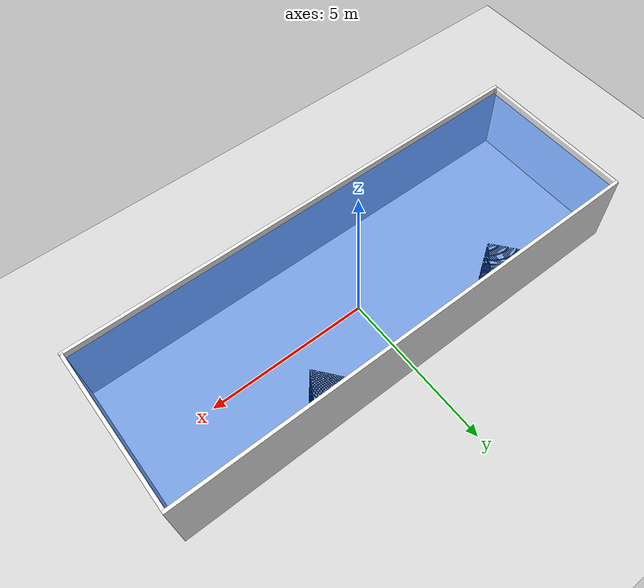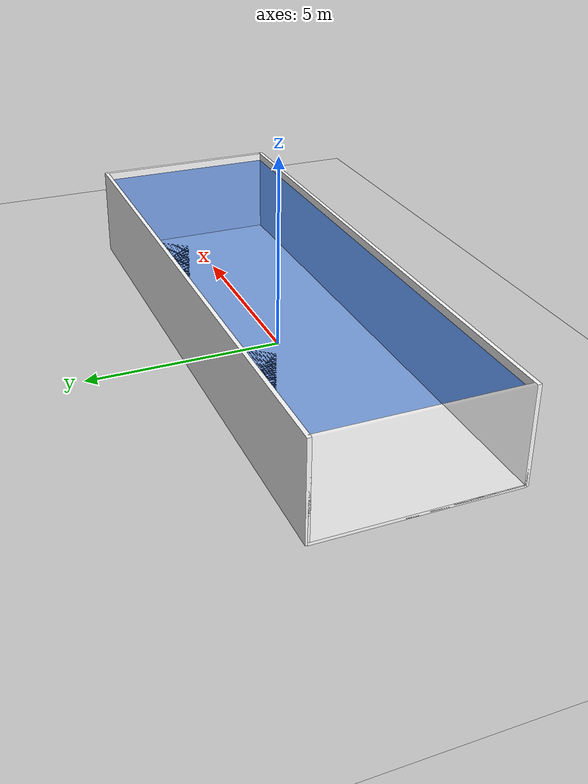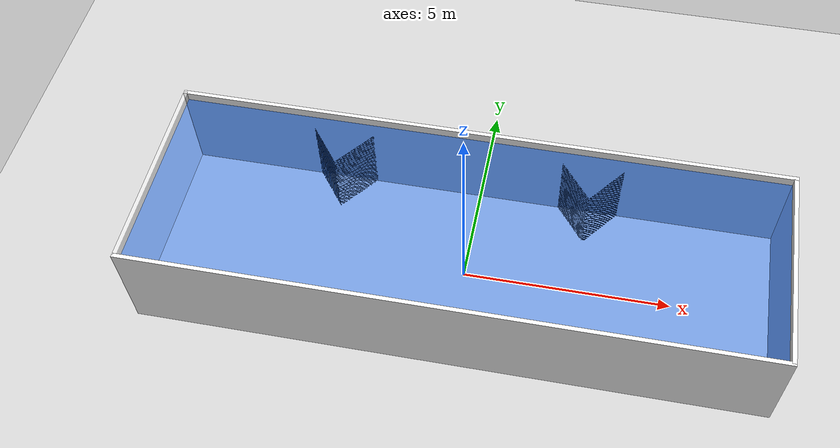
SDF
<sdf version="1.6">
 <world name="tank_world">
  <gravity>0 0 0</gravity>
  <model name="ground_plane">
   <static>true</static>
   <link name="ground_link">
    <collision name="collision">
     <geometry><plane><normal>0 0 1</normal><size>50 50</size></plane></geometry>
     <surface><friction><ode><mu>100</mu><mu2>50</mu2></ode></friction></surface>
    </collision>
    <visual name="visual">
     <geometry><plane><normal>0 0 1</normal><size>50 50</size></plane></geometry>
     <material>
      <script><uri>file://media/materials/scripts/gazebo.material</uri><name>Gazebo/Grey</name></script>
     </material>
    </visual>
   </link>
  </model>
  <light name="sun" type="directional">
   <pose>0 0 10 0 -0 0</pose>
   <diffuse>1 1 1 1</diffuse>
   <specular>0.1 0.1 0.1 1</specular>
   <direction>-0.5 0.1 -1</direction>
   <cast_shadows>false</cast_shadows>
   <attenuation>
    <range>1000</range>
    <constant>0.9</constant>
    <linear>0.01</linear>
    <quadratic>0.001</quadratic>
   </attenuation>
  </light>
  <model name="tank">
   <static>true</static>
   <link name="tank_base">
    <visual name="base_visual">
     <geometry><box><size>14.83 4.88 0.1</size></box></geometry>
     <material><ambient>1 1 1 1</ambient><diffuse>1 1 1 1</diffuse></material>
     <pose>0 0 0.01 0 0 0</pose>
    </visual>
   </link>
   <link name="wall_left">
    <visual name="left_wall">
     <geometry><box><size>0.1 4.88 2.44</size></box></geometry>
     <material><ambient>1 1 1 0.5</ambient><diffuse>1 1 1 0.5</diffuse></material>
     <pose>-7.365 0 1.22 0 0 0</pose>
    </visual>
   </link>
   <link name="wall_right">
    <visual name="right_wall">
     <geometry><box><size>0.1 4.88 2.44</size></box></geometry>
     <material><ambient>1 1 1 1</ambient><diffuse>1 1 1 1</diffuse></material>
     <pose>7.365 0 1.22 0 0 0</pose>
    </visual>
   </link>
   <link name="wall_front">
    <visual name="front_wall">
     <geometry><box><size>14.83 0.1 2.44</size></box></geometry>
     <material><ambient>1 1 1 1</ambient><diffuse>1 1 1 1</diffuse></material>
     <pose>0 -2.44 1.22 0 0 0</pose>
    </visual>
   </link>
   <link name="wall_back">
    <visual name="back_wall">
     <geometry><box><size>14.83 0.1 2.44</size></box></geometry>
     <material><ambient>1 1 1 1</ambient><diffuse>1 1 1 1</diffuse></material>
     <pose>0 2.44 1.22 0 0 0</pose>
    </visual>
   </link>
   <link name="water">
    <visual name="water">
     <geometry><box><size>14.63 4.88 2</size></box></geometry>
     <material><ambient>0 0.3 0.8 0.5</ambient><diffuse>0 0.3 0.8 0.5</diffuse></material>
     <pose>0 0 1.23 0 0 0</pose>
    </visual>
   </link>
   <link name="net1_panel1_link">
    <visual name="net1_panel1_visual">
     <geometry>
      <mesh>
       <uri>file:///home/maddie-edmondson/ros2_ws/src/asv_arov_visualization/meshes/Net.STL</uri>
       <scale>.001 .001 .001</scale>
      </mesh>
     </geometry>
     <material><ambient>0.0 0.0 0.0 1</ambient><diffuse>0.0 0.0 0.0 1</diffuse></material>
    </visual>
    <collision name="net1_panel1_collision">
     <geometry>
      <mesh>
       <uri>file:///home/maddie-edmondson/ros2_ws/src/asv_arov_visualization/meshes/Net.STL</uri>
       <scale>0.01 0.01 0.01</scale>
      </mesh>
     </geometry>
    </collision>
    <pose>-4.205 2.44 0 1.5708 0 -0.908</pose>
   </link>
   <link name="net1_panel2_link">
    <visual name="net1_panel2_visual">
     <geometry>
      <mesh>
       <uri>file:///home/maddie-edmondson/ros2_ws/src/asv_arov_visualization/meshes/Net.STL</uri>
       <scale>.001 .001 .001</scale>
      </mesh>
     </geometry>
     <material><ambient>0.0 0.0 0.0 1</ambient><diffuse>0.0 0.0 0.0 1</diffuse></material>
    </visual>
    <collision name="net1_panel2_collision">
     <geometry>
      <mesh>
       <uri>file:///home/maddie-edmondson/ros2_ws/src/asv_arov_visualization/meshes/Net.STL</uri>
       <scale>0.01 0.01 0.01</scale>
      </mesh>
     </geometry>
    </collision>
    <pose>-3.445 1.42 0 1.5708 0 0.908</pose>
   </link>
   <link name="net2_panel1_link">
    <visual name="net2_panel1_visual">
     <geometry>
      <mesh>
       <uri>file:///home/maddie-edmondson/ros2_ws/src/asv_arov_visualization/meshes/Net.STL</uri>
       <scale>.001 .001 .001</scale>
      </mesh>
     </geometry>
     <material><ambient>0.0 0.0 0.0 1</ambient><diffuse>0.0 0.0 0.0 1</diffuse></material>
    </visual>
    <collision name="net2_panel1_collision">
     <geometry>
      <mesh>
       <uri>file:///home/maddie-edmondson/ros2_ws/src/asv_arov_visualization/meshes/Net.STL</uri>
       <scale>0.01 0.01 0.01</scale>
      </mesh>
     </geometry>
    </collision>
    <pose>1.945 2.44 0 1.5708 0 -0.908</pose>
   </link>
   <link name="net2_panel2_link">
    <visual name="net2_panel2_visual">
     <geometry>
      <mesh>
       <uri>file:///home/maddie-edmondson/ros2_ws/src/asv_arov_visualization/meshes/Net.STL</uri>
       <scale>.001 .001 .001</scale>
      </mesh>
     </geometry>
     <material><ambient>0.0 0.0 0.0 1</ambient><diffuse>0.0 0.0 0.0 1</diffuse></material>
    </visual>
    <collision name="net2_panel2_collision">
     <geometry>
      <mesh>
       <uri>file:///home/maddie-edmondson/ros2_ws/src/asv_arov_visualization/meshes/Net.STL</uri>
       <scale>0.01 0.01 0.01</scale>
      </mesh>
     </geometry>
    </collision>
    <pose>2.705 1.42 0 1.5708 0 0.908</pose>
   </link>
  </model>
  <model name="trap">
   <static>false</static>
   <link name="trap_link">
    <pose>6.205 0.3 0.6 1.57 0 0</pose>
    <visual name="trap_visual">
     <geometry>
      <mesh>
       <uri>file:///home/maddie-edmondson/ros2_ws/src/asv_arov_visualization/meshes/cage.STL</uri>
       <scale>0.0009 0.0009 0.0009</scale>
      </mesh>
     </geometry>
     <material><ambient>0 0 0 0.8</ambient><diffuse>0 0 0 0.8</diffuse></material>
    </visual>
    <collision name="trap_collision"><geometry><box><size>0.4 0.4 0.2</size></box></geometry></collision>
   </link>
  </model>
 </world>
</sdf>
